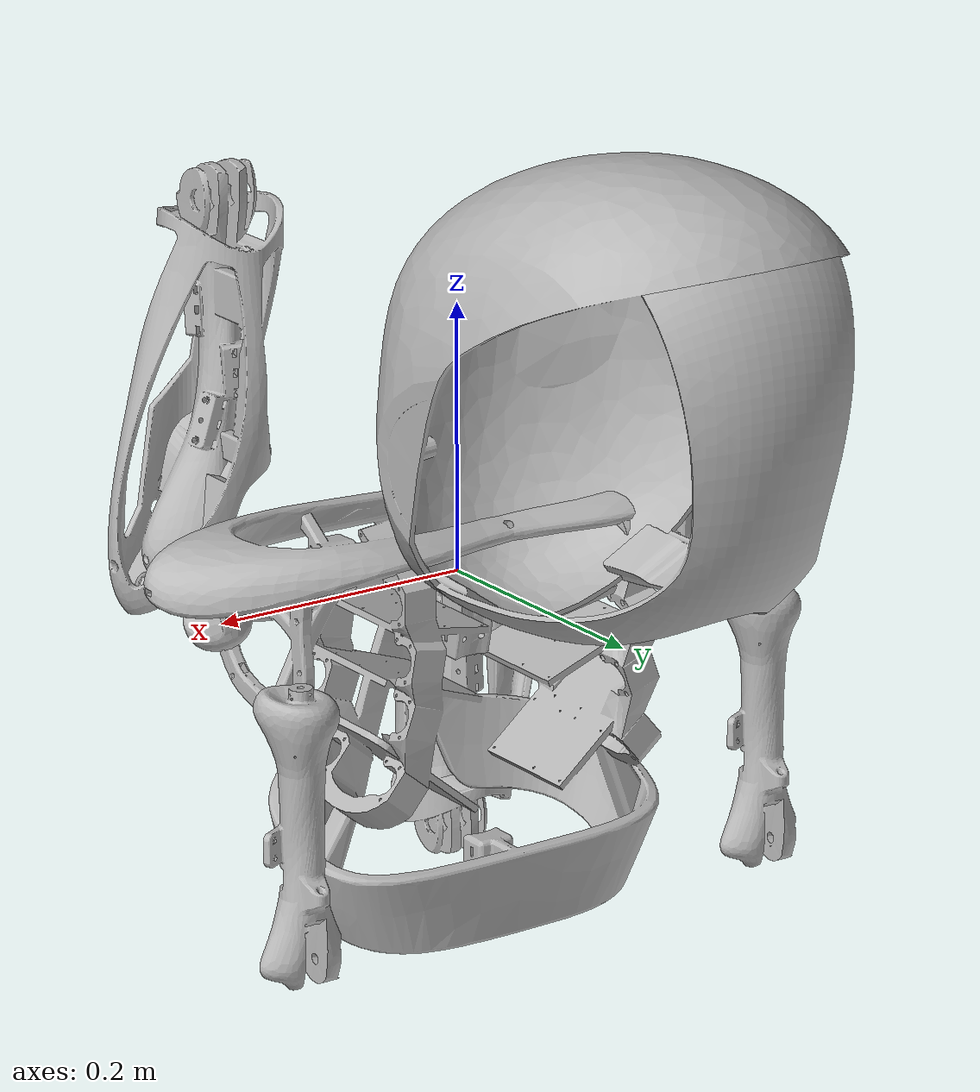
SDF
<?xml version='1.0'?>
<sdf version='1.5'>
  <model name='roboy'>
    <link name='roboy_torso'>
      <pose frame=''>0 0 0 0 0 0</pose>
      <visual name='visual'>
        <geometry>
          <mesh>
            <scale>1 1 1</scale>
            <uri>model://roboy_simplified/dae/p-torso-v04.dae</uri>
          </mesh>
        </geometry>
        <pose frame=''>0 0 0 0 -0 0</pose>
        <cast_shadows>1</cast_shadows>
        <transparency>0</transparency>
      </visual>
    </link>
    <link name='roboy_face'>
      <pose frame=''>0 0.1 0 0 -0 0</pose>
      <visual name='visual'>
        <geometry>
          <mesh>
            <scale>1 1 1</scale>
            <uri>model://roboy_simplified/dae/121213_PROTOTYP_Kopf-Vorderteil.dae</uri>
          </mesh>
        </geometry>
        <pose frame=''>0 0.1 0 0 -0 0</pose>
        <cast_shadows>1</cast_shadows>
        <transparency>0</transparency>
      </visual>
    </link>
    <link name='roboy_head'>
      <pose frame=''>0 0.1 0 0 -0 0</pose>
      <visual name='visual'>
        <geometry>
          <mesh>
            <scale>1 1 1</scale>
            <uri>model://roboy_simplified/dae/121213_PROTOTYP_Kopf-Hinterteil.dae</uri>
          </mesh>
        </geometry>
        <pose frame=''>0 0.1 0 0 -0 0</pose>
        <cast_shadows>1</cast_shadows>
        <transparency>0</transparency>
      </visual>
    </link>
    <link name='roboy_left_thigh'>
      <pose frame=''>0.1 -0.25 0 0 3.14 0</pose>
      <visual name='visual'>
        <geometry>
          <mesh>
            <scale>1 1 1</scale>
            <uri>model://roboy_simplified/dae/p-oberschenkel-v02.dae</uri>
          </mesh>
        </geometry>
        <pose frame=''>0 0.1 0 0 -0 0</pose>
        <cast_shadows>1</cast_shadows>
        <transparency>0</transparency>
      </visual>
    </link>
    <link name='roboy_right_thigh'>
      <pose frame=''>-0.1 -0.25 0 0 0 0</pose>
      <visual name='visual'>
        <geometry>
          <mesh>
            <scale>1 1 1</scale>
            <uri>model://roboy_simplified/dae/p-oberschenkel-v02.dae</uri>
          </mesh>
        </geometry>
        <pose frame=''>0 0.1 0 0 -0 0</pose>
        <cast_shadows>1</cast_shadows>
        <transparency>0</transparency>
      </visual>
    </link>
    <link name='roboy_left_upper_arm'>
      <pose frame=''>0.2 0 0 0 0 0</pose>
      <visual name='visual'>
        <geometry>
          <mesh>
            <scale>1 1 1</scale>
            <uri>model://roboy_simplified/dae/p-oberarm-1-v02.dae</uri>
          </mesh>
        </geometry>
        <pose frame=''>0 0.1 0 0 -0 0</pose>
        <cast_shadows>1</cast_shadows>
        <transparency>0</transparency>
      </visual>
    </link>
    <link name='roboy_right_upper_arm'>
      <pose frame=''>-0.2 0 0 0 0 0</pose>
      <visual name='visual'>
        <geometry>
          <mesh>
            <scale>1 1 1</scale>
            <uri>model://roboy_simplified/dae/p-oberarm-1-v02.dae</uri>
          </mesh>
        </geometry>
        <pose frame=''>0 0.1 0 0 -0 0</pose>
        <cast_shadows>1</cast_shadows>
        <transparency>0</transparency>
      </visual>
    </link>
  </model>
</sdf>
